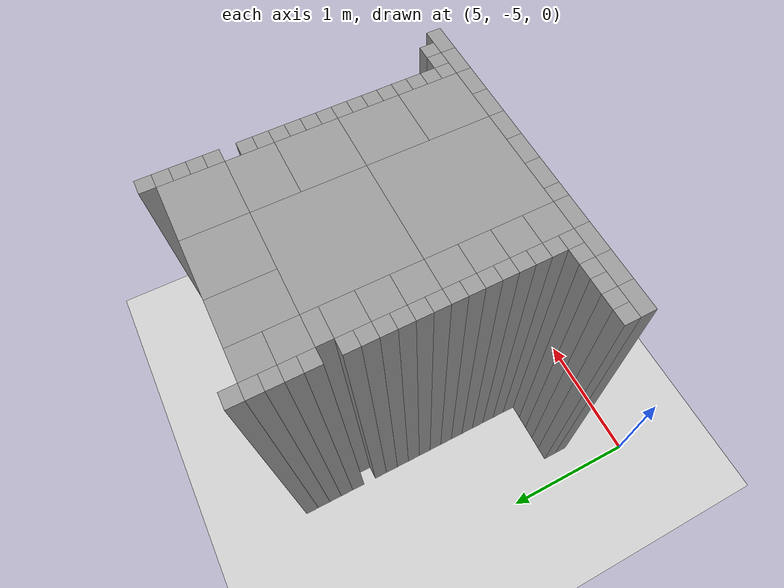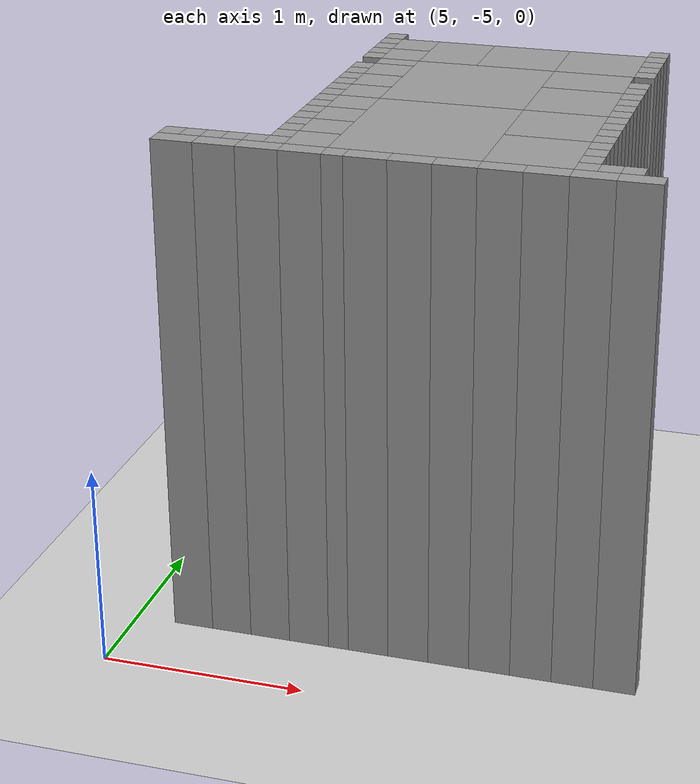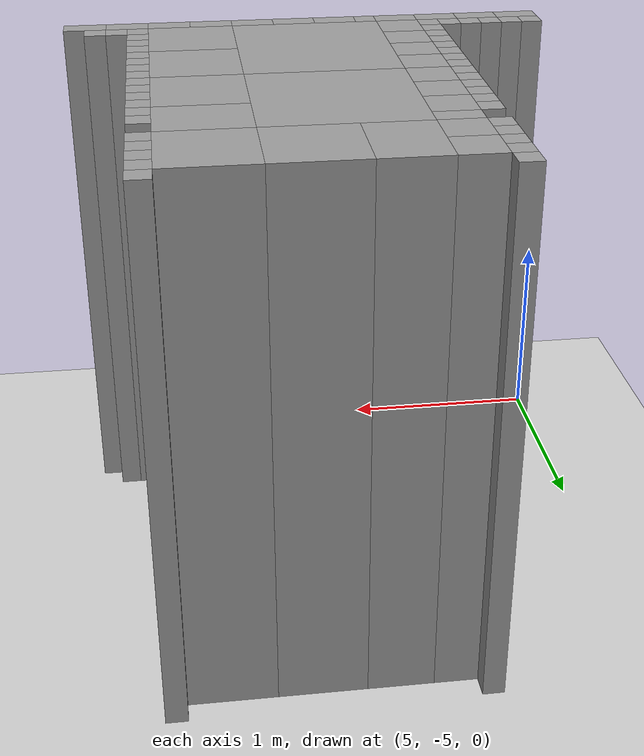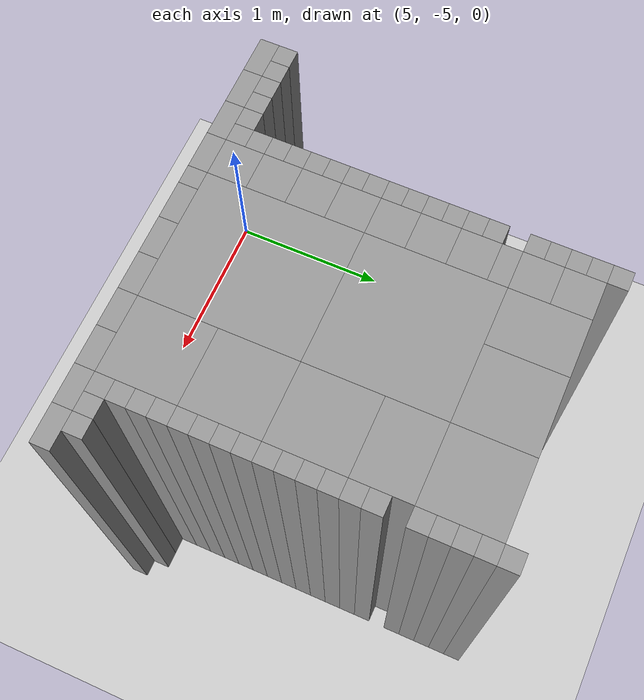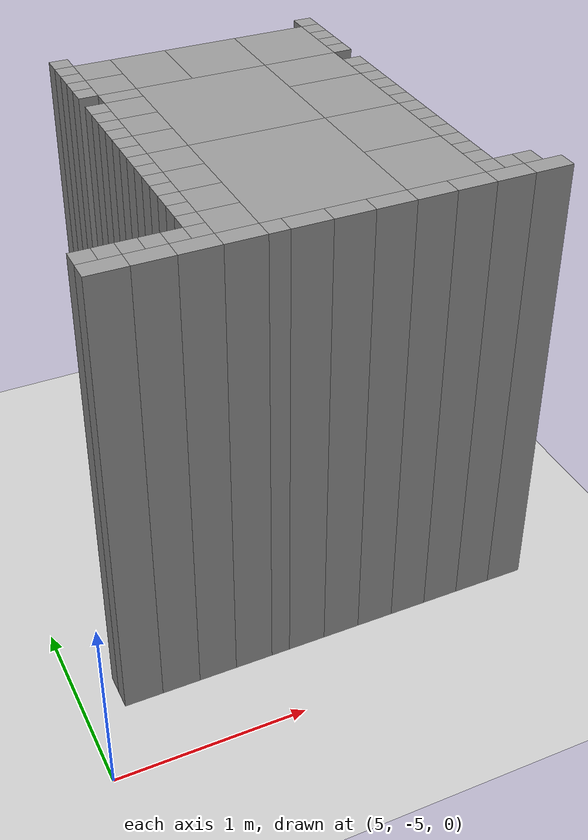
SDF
<sdf version="1.6">
 <world name="default">
  <include><uri>model://sun</uri></include>
  <include><uri>model://ground_plane</uri></include>
  <model name="stage_test">
   <static>1</static>
   <pose>-12 -12 0 0 0 0</pose>
   <link name="Wall_870">
    <pose>17.75 9.45 0 0 0 0</pose>
    <collision name="Wall_870_collision">
     <pose>0 0 1.25 0 0 0</pose>
     <geometry><box><size>0.10000000000000142 0.09999999999999964 2.5</size></box></geometry>
    </collision>
    <visual name="Wall_870_visual">
     <pose>0 0 1.25 0 0 0</pose>
     <geometry><box><size>0.10000000000000142 0.09999999999999964 2.5</size></box></geometry>
     <material>
      <script><uri>file://media/materials/scripts/gazebo.material</uri><name>Gazebo/Grey</name></script>
      <ambient>1 1 1 1</ambient>
     </material>
    </visual>
   </link>
   <link name="Wall_872">
    <pose>17.75 9.35 0 0 0 0</pose>
    <collision name="Wall_872_collision">
     <pose>0 0 1.25 0 0 0</pose>
     <geometry><box><size>0.10000000000000142 0.09999999999999964 2.5</size></box></geometry>
    </collision>
    <visual name="Wall_872_visual">
     <pose>0 0 1.25 0 0 0</pose>
     <geometry><box><size>0.10000000000000142 0.09999999999999964 2.5</size></box></geometry>
     <material>
      <script><uri>file://media/materials/scripts/gazebo.material</uri><name>Gazebo/Grey</name></script>
      <ambient>1 1 1 1</ambient>
     </material>
    </visual>
   </link>
   <link name="Wall_873">
    <pose>17.75 9.25 0 0 0 0</pose>
    <collision name="Wall_873_collision">
     <pose>0 0 1.25 0 0 0</pose>
     <geometry><box><size>0.10000000000000142 0.09999999999999964 2.5</size></box></geometry>
    </collision>
    <visual name="Wall_873_visual">
     <pose>0 0 1.25 0 0 0</pose>
     <geometry><box><size>0.10000000000000142 0.09999999999999964 2.5</size></box></geometry>
     <material>
      <script><uri>file://media/materials/scripts/gazebo.material</uri><name>Gazebo/Grey</name></script>
      <ambient>1 1 1 1</ambient>
     </material>
    </visual>
   </link>
   <link name="Wall_874">
    <pose>17.75 9.15 0 0 0 0</pose>
    <collision name="Wall_874_collision">
     <pose>0 0 1.25 0 0 0</pose>
     <geometry><box><size>0.10000000000000142 0.10000000000000142 2.5</size></box></geometry>
    </collision>
    <visual name="Wall_874_visual">
     <pose>0 0 1.25 0 0 0</pose>
     <geometry><box><size>0.10000000000000142 0.10000000000000142 2.5</size></box></geometry>
     <material>
      <script><uri>file://media/materials/scripts/gazebo.material</uri><name>Gazebo/Grey</name></script>
      <ambient>1 1 1 1</ambient>
     </material>
    </visual>
   </link>
   <link name="Wall_875">
    <pose>17.75 9.05 0 0 0 0</pose>
    <collision name="Wall_875_collision">
     <pose>0 0 1.25 0 0 0</pose>
     <geometry><box><size>0.10000000000000142 0.09999999999999964 2.5</size></box></geometry>
    </collision>
    <visual name="Wall_875_visual">
     <pose>0 0 1.25 0 0 0</pose>
     <geometry><box><size>0.10000000000000142 0.09999999999999964 2.5</size></box></geometry>
     <material>
      <script><uri>file://media/materials/scripts/gazebo.material</uri><name>Gazebo/Grey</name></script>
      <ambient>1 1 1 1</ambient>
     </material>
    </visual>
   </link>
   <link name="Wall_876">
    <pose>17.9 9.3 0 0 0 0</pose>
    <collision name="Wall_876_collision">
     <pose>0 0 1.25 0 0 0</pose>
     <geometry><box><size>0.1999999999999993 0.1999999999999993 2.5</size></box></geometry>
    </collision>
    <visual name="Wall_876_visual">
     <pose>0 0 1.25 0 0 0</pose>
     <geometry><box><size>0.1999999999999993 0.1999999999999993 2.5</size></box></geometry>
     <material>
      <script><uri>file://media/materials/scripts/gazebo.material</uri><name>Gazebo/Grey</name></script>
      <ambient>1 1 1 1</ambient>
     </material>
    </visual>
   </link>
   <link name="Wall_877">
    <pose>17.9 9.100000000000001 0 0 0 0</pose>
    <collision name="Wall_877_collision">
     <pose>0 0 1.25 0 0 0</pose>
     <geometry><box><size>0.1999999999999993 0.20000000000000107 2.5</size></box></geometry>
    </collision>
    <visual name="Wall_877_visual">
     <pose>0 0 1.25 0 0 0</pose>
     <geometry><box><size>0.1999999999999993 0.20000000000000107 2.5</size></box></geometry>
     <material>
      <script><uri>file://media/materials/scripts/gazebo.material</uri><name>Gazebo/Grey</name></script>
      <ambient>1 1 1 1</ambient>
     </material>
    </visual>
   </link>
   <link name="Wall_906">
    <pose>17.75 8.85 0 0 0 0</pose>
    <collision name="Wall_906_collision">
     <pose>0 0 1.25 0 0 0</pose>
     <geometry><box><size>0.10000000000000142 0.09999999999999964 2.5</size></box></geometry>
    </collision>
    <visual name="Wall_906_visual">
     <pose>0 0 1.25 0 0 0</pose>
     <geometry><box><size>0.10000000000000142 0.09999999999999964 2.5</size></box></geometry>
     <material>
      <script><uri>file://media/materials/scripts/gazebo.material</uri><name>Gazebo/Grey</name></script>
      <ambient>1 1 1 1</ambient>
     </material>
    </visual>
   </link>
   <link name="Wall_907">
    <pose>17.75 8.75 0 0 0 0</pose>
    <collision name="Wall_907_collision">
     <pose>0 0 1.25 0 0 0</pose>
     <geometry><box><size>0.10000000000000142 0.09999999999999964 2.5</size></box></geometry>
    </collision>
    <visual name="Wall_907_visual">
     <pose>0 0 1.25 0 0 0</pose>
     <geometry><box><size>0.10000000000000142 0.09999999999999964 2.5</size></box></geometry>
     <material>
      <script><uri>file://media/materials/scripts/gazebo.material</uri><name>Gazebo/Grey</name></script>
      <ambient>1 1 1 1</ambient>
     </material>
    </visual>
   </link>
   <link name="Wall_908">
    <pose>17.9 8.95 0 0 0 0</pose>
    <collision name="Wall_908_collision">
     <pose>0 0 1.25 0 0 0</pose>
     <geometry><box><size>0.1999999999999993 0.09999999999999964 2.5</size></box></geometry>
    </collision>
    <visual name="Wall_908_visual">
     <pose>0 0 1.25 0 0 0</pose>
     <geometry><box><size>0.1999999999999993 0.09999999999999964 2.5</size></box></geometry>
     <material>
      <script><uri>file://media/materials/scripts/gazebo.material</uri><name>Gazebo/Grey</name></script>
      <ambient>1 1 1 1</ambient>
     </material>
    </visual>
   </link>
   <link name="Wall_909">
    <pose>17.9 8.8 0 0 0 0</pose>
    <collision name="Wall_909_collision">
     <pose>0 0 1.25 0 0 0</pose>
     <geometry><box><size>0.1999999999999993 0.1999999999999993 2.5</size></box></geometry>
    </collision>
    <visual name="Wall_909_visual">
     <pose>0 0 1.25 0 0 0</pose>
     <geometry><box><size>0.1999999999999993 0.1999999999999993 2.5</size></box></geometry>
     <material>
      <script><uri>file://media/materials/scripts/gazebo.material</uri><name>Gazebo/Grey</name></script>
      <ambient>1 1 1 1</ambient>
     </material>
    </visual>
   </link>
   <link name="Wall_910">
    <pose>17.75 8.65 0 0 0 0</pose>
    <collision name="Wall_910_collision">
     <pose>0 0 1.25 0 0 0</pose>
     <geometry><box><size>0.10000000000000142 0.10000000000000142 2.5</size></box></geometry>
    </collision>
    <visual name="Wall_910_visual">
     <pose>0 0 1.25 0 0 0</pose>
     <geometry><box><size>0.10000000000000142 0.10000000000000142 2.5</size></box></geometry>
     <material>
      <script><uri>file://media/materials/scripts/gazebo.material</uri><name>Gazebo/Grey</name></script>
      <ambient>1 1 1 1</ambient>
     </material>
    </visual>
   </link>
   <link name="Wall_911">
    <pose>17.75 8.55 0 0 0 0</pose>
    <collision name="Wall_911_collision">
     <pose>0 0 1.25 0 0 0</pose>
     <geometry><box><size>0.10000000000000142 0.09999999999999964 2.5</size></box></geometry>
    </collision>
    <visual name="Wall_911_visual">
     <pose>0 0 1.25 0 0 0</pose>
     <geometry><box><size>0.10000000000000142 0.09999999999999964 2.5</size></box></geometry>
     <material>
      <script><uri>file://media/materials/scripts/gazebo.material</uri><name>Gazebo/Grey</name></script>
      <ambient>1 1 1 1</ambient>
     </material>
    </visual>
   </link>
   <link name="Wall_912">
    <pose>17.75 8.45 0 0 0 0</pose>
    <collision name="Wall_912_collision">
     <pose>0 0 1.25 0 0 0</pose>
     <geometry><box><size>0.10000000000000142 0.09999999999999964 2.5</size></box></geometry>
    </collision>
    <visual name="Wall_912_visual">
     <pose>0 0 1.25 0 0 0</pose>
     <geometry><box><size>0.10000000000000142 0.09999999999999964 2.5</size></box></geometry>
     <material>
      <script><uri>file://media/materials/scripts/gazebo.material</uri><name>Gazebo/Grey</name></script>
      <ambient>1 1 1 1</ambient>
     </material>
    </visual>
   </link>
   <link name="Wall_913">
    <pose>17.75 8.35 0 0 0 0</pose>
    <collision name="Wall_913_collision">
     <pose>0 0 1.25 0 0 0</pose>
     <geometry><box><size>0.10000000000000142 0.09999999999999964 2.5</size></box></geometry>
    </collision>
    <visual name="Wall_913_visual">
     <pose>0 0 1.25 0 0 0</pose>
     <geometry><box><size>0.10000000000000142 0.09999999999999964 2.5</size></box></geometry>
     <material>
      <script><uri>file://media/materials/scripts/gazebo.material</uri><name>Gazebo/Grey</name></script>
      <ambient>1 1 1 1</ambient>
     </material>
    </visual>
   </link>
   <link name="Wall_914">
    <pose>17.9 8.600000000000001 0 0 0 0</pose>
    <collision name="Wall_914_collision">
     <pose>0 0 1.25 0 0 0</pose>
     <geometry><box><size>0.1999999999999993 0.20000000000000107 2.5</size></box></geometry>
    </collision>
    <visual name="Wall_914_visual">
     <pose>0 0 1.25 0 0 0</pose>
     <geometry><box><size>0.1999999999999993 0.20000000000000107 2.5</size></box></geometry>
     <material>
      <script><uri>file://media/materials/scripts/gazebo.material</uri><name>Gazebo/Grey</name></script>
      <ambient>1 1 1 1</ambient>
     </material>
    </visual>
   </link>
   <link name="Wall_915">
    <pose>17.9 8.4 0 0 0 0</pose>
    <collision name="Wall_915_collision">
     <pose>0 0 1.25 0 0 0</pose>
     <geometry><box><size>0.1999999999999993 0.1999999999999993 2.5</size></box></geometry>
    </collision>
    <visual name="Wall_915_visual">
     <pose>0 0 1.25 0 0 0</pose>
     <geometry><box><size>0.1999999999999993 0.1999999999999993 2.5</size></box></geometry>
     <material>
      <script><uri>file://media/materials/scripts/gazebo.material</uri><name>Gazebo/Grey</name></script>
      <ambient>1 1 1 1</ambient>
     </material>
    </visual>
   </link>
   <link name="Wall_916">
    <pose>17.25 7.550000000000001 0 0 0 0</pose>
    <collision name="Wall_916_collision">
     <pose>0 0 1.25 0 0 0</pose>
     <geometry><box><size>0.10000000000000142 0.10000000000000053 2.5</size></box></geometry>
    </collision>
    <visual name="Wall_916_visual">
     <pose>0 0 1.25 0 0 0</pose>
     <geometry><box><size>0.10000000000000142 0.10000000000000053 2.5</size></box></geometry>
     <material>
      <script><uri>file://media/materials/scripts/gazebo.material</uri><name>Gazebo/Grey</name></script>
      <ambient>1 1 1 1</ambient>
     </material>
    </visual>
   </link>
   <link name="Wall_917">
    <pose>17.35 7.550000000000001 0 0 0 0</pose>
    <collision name="Wall_917_collision">
     <pose>0 0 1.25 0 0 0</pose>
     <geometry><box><size>0.10000000000000142 0.10000000000000053 2.5</size></box></geometry>
    </collision>
    <visual name="Wall_917_visual">
     <pose>0 0 1.25 0 0 0</pose>
     <geometry><box><size>0.10000000000000142 0.10000000000000053 2.5</size></box></geometry>
     <material>
      <script><uri>file://media/materials/scripts/gazebo.material</uri><name>Gazebo/Grey</name></script>
      <ambient>1 1 1 1</ambient>
     </material>
    </visual>
   </link>
   <link name="Wall_918">
    <pose>17.450000000000003 7.550000000000001 0 0 0 0</pose>
    <collision name="Wall_918_collision">
     <pose>0 0 1.25 0 0 0</pose>
     <geometry><box><size>0.09999999999999787 0.10000000000000053 2.5</size></box></geometry>
    </collision>
    <visual name="Wall_918_visual">
     <pose>0 0 1.25 0 0 0</pose>
     <geometry><box><size>0.09999999999999787 0.10000000000000053 2.5</size></box></geometry>
     <material>
      <script><uri>file://media/materials/scripts/gazebo.material</uri><name>Gazebo/Grey</name></script>
      <ambient>1 1 1 1</ambient>
     </material>
    </visual>
   </link>
   <link name="Wall_919">
    <pose>17.55 7.550000000000001 0 0 0 0</pose>
    <collision name="Wall_919_collision">
     <pose>0 0 1.25 0 0 0</pose>
     <geometry><box><size>0.10000000000000142 0.10000000000000053 2.5</size></box></geometry>
    </collision>
    <visual name="Wall_919_visual">
     <pose>0 0 1.25 0 0 0</pose>
     <geometry><box><size>0.10000000000000142 0.10000000000000053 2.5</size></box></geometry>
     <material>
      <script><uri>file://media/materials/scripts/gazebo.material</uri><name>Gazebo/Grey</name></script>
      <ambient>1 1 1 1</ambient>
     </material>
    </visual>
   </link>
   <link name="Wall_920">
    <pose>17.75 8.25 0 0 0 0</pose>
    <collision name="Wall_920_collision">
     <pose>0 0 1.25 0 0 0</pose>
     <geometry><box><size>0.10000000000000142 0.09999999999999964 2.5</size></box></geometry>
    </collision>
    <visual name="Wall_920_visual">
     <pose>0 0 1.25 0 0 0</pose>
     <geometry><box><size>0.10000000000000142 0.09999999999999964 2.5</size></box></geometry>
     <material>
      <script><uri>file://media/materials/scripts/gazebo.material</uri><name>Gazebo/Grey</name></script>
      <ambient>1 1 1 1</ambient>
     </material>
    </visual>
   </link>
   <link name="Wall_921">
    <pose>17.75 8.15 0 0 0 0</pose>
    <collision name="Wall_921_collision">
     <pose>0 0 1.25 0 0 0</pose>
     <geometry><box><size>0.10000000000000142 0.10000000000000142 2.5</size></box></geometry>
    </collision>
    <visual name="Wall_921_visual">
     <pose>0 0 1.25 0 0 0</pose>
     <geometry><box><size>0.10000000000000142 0.10000000000000142 2.5</size></box></geometry>
     <material>
      <script><uri>file://media/materials/scripts/gazebo.material</uri><name>Gazebo/Grey</name></script>
      <ambient>1 1 1 1</ambient>
     </material>
    </visual>
   </link>
   <link name="Wall_922">
    <pose>17.75 8.05 0 0 0 0</pose>
    <collision name="Wall_922_collision">
     <pose>0 0 1.25 0 0 0</pose>
     <geometry><box><size>0.10000000000000142 0.09999999999999964 2.5</size></box></geometry>
    </collision>
    <visual name="Wall_922_visual">
     <pose>0 0 1.25 0 0 0</pose>
     <geometry><box><size>0.10000000000000142 0.09999999999999964 2.5</size></box></geometry>
     <material>
      <script><uri>file://media/materials/scripts/gazebo.material</uri><name>Gazebo/Grey</name></script>
      <ambient>1 1 1 1</ambient>
     </material>
    </visual>
   </link>
   <link name="Wall_923">
    <pose>17.75 7.95 0 0 0 0</pose>
    <collision name="Wall_923_collision">
     <pose>0 0 1.25 0 0 0</pose>
     <geometry><box><size>0.10000000000000142 0.09999999999999964 2.5</size></box></geometry>
    </collision>
    <visual name="Wall_923_visual">
     <pose>0 0 1.25 0 0 0</pose>
     <geometry><box><size>0.10000000000000142 0.09999999999999964 2.5</size></box></geometry>
     <material>
      <script><uri>file://media/materials/scripts/gazebo.material</uri><name>Gazebo/Grey</name></script>
      <ambient>1 1 1 1</ambient>
     </material>
    </visual>
   </link>
   <link name="Wall_924">
    <pose>17.9 8.2 0 0 0 0</pose>
    <collision name="Wall_924_collision">
     <pose>0 0 1.25 0 0 0</pose>
     <geometry><box><size>0.1999999999999993 0.20000000000000107 2.5</size></box></geometry>
    </collision>
    <visual name="Wall_924_visual">
     <pose>0 0 1.25 0 0 0</pose>
     <geometry><box><size>0.1999999999999993 0.20000000000000107 2.5</size></box></geometry>
     <material>
      <script><uri>file://media/materials/scripts/gazebo.material</uri><name>Gazebo/Grey</name></script>
      <ambient>1 1 1 1</ambient>
     </material>
    </visual>
   </link>
   <link name="Wall_925">
    <pose>17.9 8.0 0 0 0 0</pose>
    <collision name="Wall_925_collision">
     <pose>0 0 1.25 0 0 0</pose>
     <geometry><box><size>0.1999999999999993 0.1999999999999993 2.5</size></box></geometry>
    </collision>
    <visual name="Wall_925_visual">
     <pose>0 0 1.25 0 0 0</pose>
     <geometry><box><size>0.1999999999999993 0.1999999999999993 2.5</size></box></geometry>
     <material>
      <script><uri>file://media/materials/scripts/gazebo.material</uri><name>Gazebo/Grey</name></script>
      <ambient>1 1 1 1</ambient>
     </material>
    </visual>
   </link>
   <link name="Wall_926">
    <pose>17.75 7.85 0 0 0 0</pose>
    <collision name="Wall_926_collision">
     <pose>0 0 1.25 0 0 0</pose>
     <geometry><box><size>0.10000000000000142 0.09999999999999964 2.5</size></box></geometry>
    </collision>
    <visual name="Wall_926_visual">
     <pose>0 0 1.25 0 0 0</pose>
     <geometry><box><size>0.10000000000000142 0.09999999999999964 2.5</size></box></geometry>
     <material>
      <script><uri>file://media/materials/scripts/gazebo.material</uri><name>Gazebo/Grey</name></script>
      <ambient>1 1 1 1</ambient>
     </material>
    </visual>
   </link>
   <link name="Wall_927">
    <pose>17.75 7.750000000000001 0 0 0 0</pose>
    <collision name="Wall_927_collision">
     <pose>0 0 1.25 0 0 0</pose>
     <geometry><box><size>0.10000000000000142 0.10000000000000053 2.5</size></box></geometry>
    </collision>
    <visual name="Wall_927_visual">
     <pose>0 0 1.25 0 0 0</pose>
     <geometry><box><size>0.10000000000000142 0.10000000000000053 2.5</size></box></geometry>
     <material>
      <script><uri>file://media/materials/scripts/gazebo.material</uri><name>Gazebo/Grey</name></script>
      <ambient>1 1 1 1</ambient>
     </material>
    </visual>
   </link>
   <link name="Wall_928">
    <pose>17.65 7.550000000000001 0 0 0 0</pose>
    <collision name="Wall_928_collision">
     <pose>0 0 1.25 0 0 0</pose>
     <geometry><box><size>0.09999999999999787 0.10000000000000053 2.5</size></box></geometry>
    </collision>
    <visual name="Wall_928_visual">
     <pose>0 0 1.25 0 0 0</pose>
     <geometry><box><size>0.09999999999999787 0.10000000000000053 2.5</size></box></geometry>
     <material>
      <script><uri>file://media/materials/scripts/gazebo.material</uri><name>Gazebo/Grey</name></script>
      <ambient>1 1 1 1</ambient>
     </material>
    </visual>
   </link>
   <link name="Wall_929">
    <pose>17.75 7.65 0 0 0 0</pose>
    <collision name="Wall_929_collision">
     <pose>0 0 1.25 0 0 0</pose>
     <geometry><box><size>0.10000000000000142 0.09999999999999964 2.5</size></box></geometry>
    </collision>
    <visual name="Wall_929_visual">
     <pose>0 0 1.25 0 0 0</pose>
     <geometry><box><size>0.10000000000000142 0.09999999999999964 2.5</size></box></geometry>
     <material>
      <script><uri>file://media/materials/scripts/gazebo.material</uri><name>Gazebo/Grey</name></script>
      <ambient>1 1 1 1</ambient>
     </material>
    </visual>
   </link>
   <link name="Wall_930">
    <pose>17.75 7.550000000000001 0 0 0 0</pose>
    <collision name="Wall_930_collision">
     <pose>0 0 1.25 0 0 0</pose>
     <geometry><box><size>0.10000000000000142 0.10000000000000053 2.5</size></box></geometry>
    </collision>
    <visual name="Wall_930_visual">
     <pose>0 0 1.25 0 0 0</pose>
     <geometry><box><size>0.10000000000000142 0.10000000000000053 2.5</size></box></geometry>
     <material>
      <script><uri>file://media/materials/scripts/gazebo.material</uri><name>Gazebo/Grey</name></script>
      <ambient>1 1 1 1</ambient>
     </material>
    </visual>
   </link>
   <link name="Wall_931">
    <pose>17.9 7.800000000000001 0 0 0 0</pose>
    <collision name="Wall_931_collision">
     <pose>0 0 1.25 0 0 0</pose>
     <geometry><box><size>0.1999999999999993 0.20000000000000018 2.5</size></box></geometry>
    </collision>
    <visual name="Wall_931_visual">
     <pose>0 0 1.25 0 0 0</pose>
     <geometry><box><size>0.1999999999999993 0.20000000000000018 2.5</size></box></geometry>
     <material>
      <script><uri>file://media/materials/scripts/gazebo.material</uri><name>Gazebo/Grey</name></script>
      <ambient>1 1 1 1</ambient>
     </material>
    </visual>
   </link>
   <link name="Wall_932">
    <pose>17.9 7.6 0 0 0 0</pose>
    <collision name="Wall_932_collision">
     <pose>0 0 1.25 0 0 0</pose>
     <geometry><box><size>0.1999999999999993 0.20000000000000018 2.5</size></box></geometry>
    </collision>
    <visual name="Wall_932_visual">
     <pose>0 0 1.25 0 0 0</pose>
     <geometry><box><size>0.1999999999999993 0.20000000000000018 2.5</size></box></geometry>
     <material>
      <script><uri>file://media/materials/scripts/gazebo.material</uri><name>Gazebo/Grey</name></script>
      <ambient>1 1 1 1</ambient>
     </material>
    </visual>
   </link>
   <link name="Wall_937">
    <pose>17.3 7.45 0 0 0 0</pose>
    <collision name="Wall_937_collision">
     <pose>0 0 1.25 0 0 0</pose>
     <geometry><box><size>0.20000000000000284 0.09999999999999964 2.5</size></box></geometry>
    </collision>
    <visual name="Wall_937_visual">
     <pose>0 0 1.25 0 0 0</pose>
     <geometry><box><size>0.20000000000000284 0.09999999999999964 2.5</size></box></geometry>
     <material>
      <script><uri>file://media/materials/scripts/gazebo.material</uri><name>Gazebo/Grey</name></script>
      <ambient>1 1 1 1</ambient>
     </material>
    </visual>
   </link>
   <link name="Wall_938">
    <pose>17.5 7.45 0 0 0 0</pose>
    <collision name="Wall_938_collision">
     <pose>0 0 1.25 0 0 0</pose>
     <geometry><box><size>0.1999999999999993 0.09999999999999964 2.5</size></box></geometry>
    </collision>
    <visual name="Wall_938_visual">
     <pose>0 0 1.25 0 0 0</pose>
     <geometry><box><size>0.1999999999999993 0.09999999999999964 2.5</size></box></geometry>
     <material>
      <script><uri>file://media/materials/scripts/gazebo.material</uri><name>Gazebo/Grey</name></script>
      <ambient>1 1 1 1</ambient>
     </material>
    </visual>
   </link>
   <link name="Wall_939">
    <pose>17.700000000000003 7.45 0 0 0 0</pose>
    <collision name="Wall_939_collision">
     <pose>0 0 1.25 0 0 0</pose>
     <geometry><box><size>0.1999999999999993 0.09999999999999964 2.5</size></box></geometry>
    </collision>
    <visual name="Wall_939_visual">
     <pose>0 0 1.25 0 0 0</pose>
     <geometry><box><size>0.1999999999999993 0.09999999999999964 2.5</size></box></geometry>
     <material>
      <script><uri>file://media/materials/scripts/gazebo.material</uri><name>Gazebo/Grey</name></script>
      <ambient>1 1 1 1</ambient>
     </material>
    </visual>
   </link>
   <link name="Wall_940">
    <pose>17.9 7.45 0 0 0 0</pose>
    <collision name="Wall_940_collision">
     <pose>0 0 1.25 0 0 0</pose>
     <geometry><box><size>0.1999999999999993 0.09999999999999964 2.5</size></box></geometry>
    </collision>
    <visual name="Wall_940_visual">
     <pose>0 0 1.25 0 0 0</pose>
     <geometry><box><size>0.1999999999999993 0.09999999999999964 2.5</size></box></geometry>
     <material>
      <script><uri>file://media/materials/scripts/gazebo.material</uri><name>Gazebo/Grey</name></script>
      <ambient>1 1 1 1</ambient>
     </material>
    </visual>
   </link>
   <link name="Wall_943">
    <pose>18.15 9.2 0 0 0 0</pose>
    <collision name="Wall_943_collision">
     <pose>0 0 1.25 0 0 0</pose>
     <geometry><box><size>0.3000000000000007 0.40000000000000036 2.5</size></box></geometry>
    </collision>
    <visual name="Wall_943_visual">
     <pose>0 0 1.25 0 0 0</pose>
     <geometry><box><size>0.3000000000000007 0.40000000000000036 2.5</size></box></geometry>
     <material>
      <script><uri>file://media/materials/scripts/gazebo.material</uri><name>Gazebo/Grey</name></script>
      <ambient>1 1 1 1</ambient>
     </material>
    </visual>
   </link>
   <link name="Wall_946">
    <pose>18.5 9.2 0 0 0 0</pose>
    <collision name="Wall_946_collision">
     <pose>0 0 1.25 0 0 0</pose>
     <geometry><box><size>0.3999999999999986 0.40000000000000036 2.5</size></box></geometry>
    </collision>
    <visual name="Wall_946_visual">
     <pose>0 0 1.25 0 0 0</pose>
     <geometry><box><size>0.3999999999999986 0.40000000000000036 2.5</size></box></geometry>
     <material>
      <script><uri>file://media/materials/scripts/gazebo.material</uri><name>Gazebo/Grey</name></script>
      <ambient>1 1 1 1</ambient>
     </material>
    </visual>
   </link>
   <link name="Wall_949">
    <pose>18.9 9.2 0 0 0 0</pose>
    <collision name="Wall_949_collision">
     <pose>0 0 1.25 0 0 0</pose>
     <geometry><box><size>0.40000000000000213 0.40000000000000036 2.5</size></box></geometry>
    </collision>
    <visual name="Wall_949_visual">
     <pose>0 0 1.25 0 0 0</pose>
     <geometry><box><size>0.40000000000000213 0.40000000000000036 2.5</size></box></geometry>
     <material>
      <script><uri>file://media/materials/scripts/gazebo.material</uri><name>Gazebo/Grey</name></script>
      <ambient>1 1 1 1</ambient>
     </material>
    </visual>
   </link>
   <link name="Wall_951">
    <pose>19.150000000000002 9.45 0 0 0 0</pose>
    <collision name="Wall_951_collision">
     <pose>0 0 1.25 0 0 0</pose>
     <geometry><box><size>0.10000000000000142 0.09999999999999964 2.5</size></box></geometry>
    </collision>
    <visual name="Wall_951_visual">
     <pose>0 0 1.25 0 0 0</pose>
     <geometry><box><size>0.10000000000000142 0.09999999999999964 2.5</size></box></geometry>
     <material>
      <script><uri>file://media/materials/scripts/gazebo.material</uri><name>Gazebo/Grey</name></script>
      <ambient>1 1 1 1</ambient>
     </material>
    </visual>
   </link>
   <link name="Wall_952">
    <pose>19.150000000000002 9.35 0 0 0 0</pose>
    <collision name="Wall_952_collision">
     <pose>0 0 1.25 0 0 0</pose>
     <geometry><box><size>0.10000000000000142 0.09999999999999964 2.5</size></box></geometry>
    </collision>
    <visual name="Wall_952_visual">
     <pose>0 0 1.25 0 0 0</pose>
     <geometry><box><size>0.10000000000000142 0.09999999999999964 2.5</size></box></geometry>
     <material>
      <script><uri>file://media/materials/scripts/gazebo.material</uri><name>Gazebo/Grey</name></script>
      <ambient>1 1 1 1</ambient>
     </material>
    </visual>
   </link>
   <link name="Wall_953">
    <pose>19.150000000000002 9.25 0 0 0 0</pose>
    <collision name="Wall_953_collision">
     <pose>0 0 1.25 0 0 0</pose>
     <geometry><box><size>0.10000000000000142 0.09999999999999964 2.5</size></box></geometry>
    </collision>
    <visual name="Wall_953_visual">
     <pose>0 0 1.25 0 0 0</pose>
     <geometry><box><size>0.10000000000000142 0.09999999999999964 2.5</size></box></geometry>
     <material>
      <script><uri>file://media/materials/scripts/gazebo.material</uri><name>Gazebo/Grey</name></script>
      <ambient>1 1 1 1</ambient>
     </material>
    </visual>
   </link>
   <link name="Wall_954">
    <pose>19.150000000000002 9.15 0 0 0 0</pose>
    <collision name="Wall_954_collision">
     <pose>0 0 1.25 0 0 0</pose>
     <geometry><box><size>0.10000000000000142 0.10000000000000142 2.5</size></box></geometry>
    </collision>
    <visual name="Wall_954_visual">
     <pose>0 0 1.25 0 0 0</pose>
     <geometry><box><size>0.10000000000000142 0.10000000000000142 2.5</size></box></geometry>
     <material>
      <script><uri>file://media/materials/scripts/gazebo.material</uri><name>Gazebo/Grey</name></script>
      <ambient>1 1 1 1</ambient>
     </material>
    </visual>
   </link>
   <link name="Wall_955">
    <pose>19.150000000000002 9.05 0 0 0 0</pose>
    <collision name="Wall_955_collision">
     <pose>0 0 1.25 0 0 0</pose>
     <geometry><box><size>0.10000000000000142 0.09999999999999964 2.5</size></box></geometry>
    </collision>
    <visual name="Wall_955_visual">
     <pose>0 0 1.25 0 0 0</pose>
     <geometry><box><size>0.10000000000000142 0.09999999999999964 2.5</size></box></geometry>
     <material>
      <script><uri>file://media/materials/scripts/gazebo.material</uri><name>Gazebo/Grey</name></script>
      <ambient>1 1 1 1</ambient>
     </material>
    </visual>
   </link>
   <link name="Wall_956">
    <pose>18.35 8.65 0 0 0 0</pose>
    <collision name="Wall_956_collision">
     <pose>0 0 1.25 0 0 0</pose>
     <geometry><box><size>0.6999999999999993 0.6999999999999993 2.5</size></box></geometry>
    </collision>
    <visual name="Wall_956_visual">
     <pose>0 0 1.25 0 0 0</pose>
     <geometry><box><size>0.6999999999999993 0.6999999999999993 2.5</size></box></geometry>
     <material>
      <script><uri>file://media/materials/scripts/gazebo.material</uri><name>Gazebo/Grey</name></script>
      <ambient>1 1 1 1</ambient>
     </material>
    </visual>
   </link>
   <link name="Wall_957">
    <pose>18.35 7.9 0 0 0 0</pose>
    <collision name="Wall_957_collision">
     <pose>0 0 1.25 0 0 0</pose>
     <geometry><box><size>0.6999999999999993 0.8000000000000007 2.5</size></box></geometry>
    </collision>
    <visual name="Wall_957_visual">
     <pose>0 0 1.25 0 0 0</pose>
     <geometry><box><size>0.6999999999999993 0.8000000000000007 2.5</size></box></geometry>
     <material>
      <script><uri>file://media/materials/scripts/gazebo.material</uri><name>Gazebo/Grey</name></script>
      <ambient>1 1 1 1</ambient>
     </material>
    </visual>
   </link>
   <link name="Wall_958">
    <pose>18.9 8.850000000000001 0 0 0 0</pose>
    <collision name="Wall_958_collision">
     <pose>0 0 1.25 0 0 0</pose>
     <geometry><box><size>0.40000000000000213 0.29999999999999893 2.5</size></box></geometry>
    </collision>
    <visual name="Wall_958_visual">
     <pose>0 0 1.25 0 0 0</pose>
     <geometry><box><size>0.40000000000000213 0.29999999999999893 2.5</size></box></geometry>
     <material>
      <script><uri>file://media/materials/scripts/gazebo.material</uri><name>Gazebo/Grey</name></script>
      <ambient>1 1 1 1</ambient>
     </material>
    </visual>
   </link>
   <link name="Wall_959">
    <pose>18.9 8.500000000000002 0 0 0 0</pose>
    <collision name="Wall_959_collision">
     <pose>0 0 1.25 0 0 0</pose>
     <geometry><box><size>0.40000000000000213 0.40000000000000036 2.5</size></box></geometry>
    </collision>
    <visual name="Wall_959_visual">
     <pose>0 0 1.25 0 0 0</pose>
     <geometry><box><size>0.40000000000000213 0.40000000000000036 2.5</size></box></geometry>
     <material>
      <script><uri>file://media/materials/scripts/gazebo.material</uri><name>Gazebo/Grey</name></script>
      <ambient>1 1 1 1</ambient>
     </material>
    </visual>
   </link>
   <link name="Wall_960">
    <pose>19.150000000000002 8.85 0 0 0 0</pose>
    <collision name="Wall_960_collision">
     <pose>0 0 1.25 0 0 0</pose>
     <geometry><box><size>0.10000000000000142 0.09999999999999964 2.5</size></box></geometry>
    </collision>
    <visual name="Wall_960_visual">
     <pose>0 0 1.25 0 0 0</pose>
     <geometry><box><size>0.10000000000000142 0.09999999999999964 2.5</size></box></geometry>
     <material>
      <script><uri>file://media/materials/scripts/gazebo.material</uri><name>Gazebo/Grey</name></script>
      <ambient>1 1 1 1</ambient>
     </material>
    </visual>
   </link>
   <link name="Wall_961">
    <pose>19.150000000000002 8.75 0 0 0 0</pose>
    <collision name="Wall_961_collision">
     <pose>0 0 1.25 0 0 0</pose>
     <geometry><box><size>0.10000000000000142 0.09999999999999964 2.5</size></box></geometry>
    </collision>
    <visual name="Wall_961_visual">
     <pose>0 0 1.25 0 0 0</pose>
     <geometry><box><size>0.10000000000000142 0.09999999999999964 2.5</size></box></geometry>
     <material>
      <script><uri>file://media/materials/scripts/gazebo.material</uri><name>Gazebo/Grey</name></script>
      <ambient>1 1 1 1</ambient>
     </material>
    </visual>
   </link>
   <link name="Wall_962">
    <pose>19.150000000000002 8.65 0 0 0 0</pose>
    <collision name="Wall_962_collision">
     <pose>0 0 1.25 0 0 0</pose>
     <geometry><box><size>0.10000000000000142 0.10000000000000142 2.5</size></box></geometry>
    </collision>
    <visual name="Wall_962_visual">
     <pose>0 0 1.25 0 0 0</pose>
     <geometry><box><size>0.10000000000000142 0.10000000000000142 2.5</size></box></geometry>
     <material>
      <script><uri>file://media/materials/scripts/gazebo.material</uri><name>Gazebo/Grey</name></script>
      <ambient>1 1 1 1</ambient>
     </material>
    </visual>
   </link>
   <link name="Wall_963">
    <pose>19.150000000000002 8.55 0 0 0 0</pose>
    <collision name="Wall_963_collision">
     <pose>0 0 1.25 0 0 0</pose>
     <geometry><box><size>0.10000000000000142 0.09999999999999964 2.5</size></box></geometry>
    </collision>
    <visual name="Wall_963_visual">
     <pose>0 0 1.25 0 0 0</pose>
     <geometry><box><size>0.10000000000000142 0.09999999999999964 2.5</size></box></geometry>
     <material>
      <script><uri>file://media/materials/scripts/gazebo.material</uri><name>Gazebo/Grey</name></script>
      <ambient>1 1 1 1</ambient>
     </material>
    </visual>
   </link>
   <link name="Wall_964">
    <pose>19.150000000000002 8.45 0 0 0 0</pose>
    <collision name="Wall_964_collision">
     <pose>0 0 1.25 0 0 0</pose>
     <geometry><box><size>0.10000000000000142 0.09999999999999964 2.5</size></box></geometry>
    </collision>
    <visual name="Wall_964_visual">
     <pose>0 0 1.25 0 0 0</pose>
     <geometry><box><size>0.10000000000000142 0.09999999999999964 2.5</size></box></geometry>
     <material>
      <script><uri>file://media/materials/scripts/gazebo.material</uri><name>Gazebo/Grey</name></script>
      <ambient>1 1 1 1</ambient>
     </material>
    </visual>
   </link>
   <link name="Wall_965">
    <pose>19.150000000000002 8.35 0 0 0 0</pose>
    <collision name="Wall_965_collision">
     <pose>0 0 1.25 0 0 0</pose>
     <geometry><box><size>0.10000000000000142 0.09999999999999964 2.5</size></box></geometry>
    </collision>
    <visual name="Wall_965_visual">
     <pose>0 0 1.25 0 0 0</pose>
     <geometry><box><size>0.10000000000000142 0.09999999999999964 2.5</size></box></geometry>
     <material>
      <script><uri>file://media/materials/scripts/gazebo.material</uri><name>Gazebo/Grey</name></script>
      <ambient>1 1 1 1</ambient>
     </material>
    </visual>
   </link>
   <link name="Wall_966">
    <pose>18.9 8.100000000000001 0 0 0 0</pose>
    <collision name="Wall_966_collision">
     <pose>0 0 1.25 0 0 0</pose>
     <geometry><box><size>0.40000000000000213 0.40000000000000036 2.5</size></box></geometry>
    </collision>
    <visual name="Wall_966_visual">
     <pose>0 0 1.25 0 0 0</pose>
     <geometry><box><size>0.40000000000000213 0.40000000000000036 2.5</size></box></geometry>
     <material>
      <script><uri>file://media/materials/scripts/gazebo.material</uri><name>Gazebo/Grey</name></script>
      <ambient>1 1 1 1</ambient>
     </material>
    </visual>
   </link>
   <link name="Wall_967">
    <pose>18.9 7.699999999999999 0 0 0 0</pose>
    <collision name="Wall_967_collision">
     <pose>0 0 1.25 0 0 0</pose>
     <geometry><box><size>0.40000000000000213 0.40000000000000036 2.5</size></box></geometry>
    </collision>
    <visual name="Wall_967_visual">
     <pose>0 0 1.25 0 0 0</pose>
     <geometry><box><size>0.40000000000000213 0.40000000000000036 2.5</size></box></geometry>
     <material>
      <script><uri>file://media/materials/scripts/gazebo.material</uri><name>Gazebo/Grey</name></script>
      <ambient>1 1 1 1</ambient>
     </material>
    </visual>
   </link>
   <link name="Wall_968">
    <pose>19.150000000000002 8.25 0 0 0 0</pose>
    <collision name="Wall_968_collision">
     <pose>0 0 1.25 0 0 0</pose>
     <geometry><box><size>0.10000000000000142 0.09999999999999964 2.5</size></box></geometry>
    </collision>
    <visual name="Wall_968_visual">
     <pose>0 0 1.25 0 0 0</pose>
     <geometry><box><size>0.10000000000000142 0.09999999999999964 2.5</size></box></geometry>
     <material>
      <script><uri>file://media/materials/scripts/gazebo.material</uri><name>Gazebo/Grey</name></script>
      <ambient>1 1 1 1</ambient>
     </material>
    </visual>
   </link>
   <link name="Wall_969">
    <pose>19.150000000000002 8.15 0 0 0 0</pose>
    <collision name="Wall_969_collision">
     <pose>0 0 1.25 0 0 0</pose>
     <geometry><box><size>0.10000000000000142 0.10000000000000142 2.5</size></box></geometry>
    </collision>
    <visual name="Wall_969_visual">
     <pose>0 0 1.25 0 0 0</pose>
     <geometry><box><size>0.10000000000000142 0.10000000000000142 2.5</size></box></geometry>
     <material>
      <script><uri>file://media/materials/scripts/gazebo.material</uri><name>Gazebo/Grey</name></script>
      <ambient>1 1 1 1</ambient>
     </material>
    </visual>
   </link>
   <link name="Wall_970">
    <pose>19.150000000000002 8.05 0 0 0 0</pose>
    <collision name="Wall_970_collision">
     <pose>0 0 1.25 0 0 0</pose>
     <geometry><box><size>0.10000000000000142 0.09999999999999964 2.5</size></box></geometry>
    </collision>
    <visual name="Wall_970_visual">
     <pose>0 0 1.25 0 0 0</pose>
     <geometry><box><size>0.10000000000000142 0.09999999999999964 2.5</size></box></geometry>
     <material>
      <script><uri>file://media/materials/scripts/gazebo.material</uri><name>Gazebo/Grey</name></script>
      <ambient>1 1 1 1</ambient>
     </material>
    </visual>
   </link>
   <link name="Wall_971">
    <pose>19.150000000000002 7.95 0 0 0 0</pose>
    <collision name="Wall_971_collision">
     <pose>0 0 1.25 0 0 0</pose>
     <geometry><box><size>0.10000000000000142 0.09999999999999964 2.5</size></box></geometry>
    </collision>
    <visual name="Wall_971_visual">
     <pose>0 0 1.25 0 0 0</pose>
     <geometry><box><size>0.10000000000000142 0.09999999999999964 2.5</size></box></geometry>
     <material>
      <script><uri>file://media/materials/scripts/gazebo.material</uri><name>Gazebo/Grey</name></script>
      <ambient>1 1 1 1</ambient>
     </material>
    </visual>
   </link>
   <link name="Wall_972">
    <pose>19.150000000000002 7.85 0 0 0 0</pose>
    <collision name="Wall_972_collision">
     <pose>0 0 1.25 0 0 0</pose>
     <geometry><box><size>0.10000000000000142 0.09999999999999964 2.5</size></box></geometry>
    </collision>
    <visual name="Wall_972_visual">
     <pose>0 0 1.25 0 0 0</pose>
     <geometry><box><size>0.10000000000000142 0.09999999999999964 2.5</size></box></geometry>
     <material>
      <script><uri>file://media/materials/scripts/gazebo.material</uri><name>Gazebo/Grey</name></script>
      <ambient>1 1 1 1</ambient>
     </material>
    </visual>
   </link>
   <link name="Wall_973">
    <pose>19.150000000000002 7.750000000000001 0 0 0 0</pose>
    <collision name="Wall_973_collision">
     <pose>0 0 1.25 0 0 0</pose>
     <geometry><box><size>0.10000000000000142 0.10000000000000053 2.5</size></box></geometry>
    </collision>
    <visual name="Wall_973_visual">
     <pose>0 0 1.25 0 0 0</pose>
     <geometry><box><size>0.10000000000000142 0.10000000000000053 2.5</size></box></geometry>
     <material>
      <script><uri>file://media/materials/scripts/gazebo.material</uri><name>Gazebo/Grey</name></script>
      <ambient>1 1 1 1</ambient>
     </material>
    </visual>
   </link>
   <link name="Wall_974">
    <pose>19.150000000000002 7.65 0 0 0 0</pose>
    <collision name="Wall_974_collision">
     <pose>0 0 1.25 0 0 0</pose>
     <geometry><box><size>0.10000000000000142 0.09999999999999964 2.5</size></box></geometry>
    </collision>
    <visual name="Wall_974_visual">
     <pose>0 0 1.25 0 0 0</pose>
     <geometry><box><size>0.10000000000000142 0.09999999999999964 2.5</size></box></geometry>
     <material>
      <script><uri>file://media/materials/scripts/gazebo.material</uri><name>Gazebo/Grey</name></script>
      <ambient>1 1 1 1</ambient>
     </material>
    </visual>
   </link>
   <link name="Wall_975">
    <pose>19.150000000000002 7.550000000000001 0 0 0 0</pose>
    <collision name="Wall_975_collision">
     <pose>0 0 1.25 0 0 0</pose>
     <geometry><box><size>0.10000000000000142 0.10000000000000053 2.5</size></box></geometry>
    </collision>
    <visual name="Wall_975_visual">
     <pose>0 0 1.25 0 0 0</pose>
     <geometry><box><size>0.10000000000000142 0.10000000000000053 2.5</size></box></geometry>
     <material>
      <script><uri>file://media/materials/scripts/gazebo.material</uri><name>Gazebo/Grey</name></script>
      <ambient>1 1 1 1</ambient>
     </material>
    </visual>
   </link>
   <link name="Wall_976">
    <pose>19.25 7.550000000000001 0 0 0 0</pose>
    <collision name="Wall_976_collision">
     <pose>0 0 1.25 0 0 0</pose>
     <geometry><box><size>0.09999999999999787 0.10000000000000053 2.5</size></box></geometry>
    </collision>
    <visual name="Wall_976_visual">
     <pose>0 0 1.25 0 0 0</pose>
     <geometry><box><size>0.09999999999999787 0.10000000000000053 2.5</size></box></geometry>
     <material>
      <script><uri>file://media/materials/scripts/gazebo.material</uri><name>Gazebo/Grey</name></script>
      <ambient>1 1 1 1</ambient>
     </material>
    </visual>
   </link>
   <link name="Wall_977">
    <pose>19.35 7.550000000000001 0 0 0 0</pose>
    <collision name="Wall_977_collision">
     <pose>0 0 1.25 0 0 0</pose>
     <geometry><box><size>0.10000000000000142 0.10000000000000053 2.5</size></box></geometry>
    </collision>
    <visual name="Wall_977_visual">
     <pose>0 0 1.25 0 0 0</pose>
     <geometry><box><size>0.10000000000000142 0.10000000000000053 2.5</size></box></geometry>
     <material>
      <script><uri>file://media/materials/scripts/gazebo.material</uri><name>Gazebo/Grey</name></script>
      <ambient>1 1 1 1</ambient>
     </material>
    </visual>
   </link>
   <link name="Wall_979">
    <pose>18.05 7.45 0 0 0 0</pose>
    <collision name="Wall_979_collision">
     <pose>0 0 1.25 0 0 0</pose>
     <geometry><box><size>0.10000000000000142 0.09999999999999964 2.5</size></box></geometry>
    </collision>
    <visual name="Wall_979_visual">
     <pose>0 0 1.25 0 0 0</pose>
     <geometry><box><size>0.10000000000000142 0.09999999999999964 2.5</size></box></geometry>
     <material>
      <script><uri>file://media/materials/scripts/gazebo.material</uri><name>Gazebo/Grey</name></script>
      <ambient>1 1 1 1</ambient>
     </material>
    </visual>
   </link>
   <link name="Wall_980">
    <pose>18.200000000000003 7.45 0 0 0 0</pose>
    <collision name="Wall_980_collision">
     <pose>0 0 1.25 0 0 0</pose>
     <geometry><box><size>0.1999999999999993 0.09999999999999964 2.5</size></box></geometry>
    </collision>
    <visual name="Wall_980_visual">
     <pose>0 0 1.25 0 0 0</pose>
     <geometry><box><size>0.1999999999999993 0.09999999999999964 2.5</size></box></geometry>
     <material>
      <script><uri>file://media/materials/scripts/gazebo.material</uri><name>Gazebo/Grey</name></script>
      <ambient>1 1 1 1</ambient>
     </material>
    </visual>
   </link>
   <link name="Wall_981">
    <pose>18.4 7.45 0 0 0 0</pose>
    <collision name="Wall_981_collision">
     <pose>0 0 1.25 0 0 0</pose>
     <geometry><box><size>0.1999999999999993 0.09999999999999964 2.5</size></box></geometry>
    </collision>
    <visual name="Wall_981_visual">
     <pose>0 0 1.25 0 0 0</pose>
     <geometry><box><size>0.1999999999999993 0.09999999999999964 2.5</size></box></geometry>
     <material>
      <script><uri>file://media/materials/scripts/gazebo.material</uri><name>Gazebo/Grey</name></script>
      <ambient>1 1 1 1</ambient>
     </material>
    </visual>
   </link>
   <link name="Wall_982">
    <pose>18.6 7.45 0 0 0 0</pose>
    <collision name="Wall_982_collision">
     <pose>0 0 1.25 0 0 0</pose>
     <geometry><box><size>0.1999999999999993 0.09999999999999964 2.5</size></box></geometry>
    </collision>
    <visual name="Wall_982_visual">
     <pose>0 0 1.25 0 0 0</pose>
     <geometry><box><size>0.1999999999999993 0.09999999999999964 2.5</size></box></geometry>
     <material>
      <script><uri>file://media/materials/scripts/gazebo.material</uri><name>Gazebo/Grey</name></script>
      <ambient>1 1 1 1</ambient>
     </material>
    </visual>
   </link>
   <link name="Wall_983">
    <pose>18.8 7.45 0 0 0 0</pose>
    <collision name="Wall_983_collision">
     <pose>0 0 1.25 0 0 0</pose>
     <geometry><box><size>0.20000000000000284 0.09999999999999964 2.5</size></box></geometry>
    </collision>
    <visual name="Wall_983_visual">
     <pose>0 0 1.25 0 0 0</pose>
     <geometry><box><size>0.20000000000000284 0.09999999999999964 2.5</size></box></geometry>
     <material>
      <script><uri>file://media/materials/scripts/gazebo.material</uri><name>Gazebo/Grey</name></script>
      <ambient>1 1 1 1</ambient>
     </material>
    </visual>
   </link>
   <link name="Wall_984">
    <pose>19.0 7.45 0 0 0 0</pose>
    <collision name="Wall_984_collision">
     <pose>0 0 1.25 0 0 0</pose>
     <geometry><box><size>0.1999999999999993 0.09999999999999964 2.5</size></box></geometry>
    </collision>
    <visual name="Wall_984_visual">
     <pose>0 0 1.25 0 0 0</pose>
     <geometry><box><size>0.1999999999999993 0.09999999999999964 2.5</size></box></geometry>
     <material>
      <script><uri>file://media/materials/scripts/gazebo.material</uri><name>Gazebo/Grey</name></script>
      <ambient>1 1 1 1</ambient>
     </material>
    </visual>
   </link>
   <link name="Wall_985">
    <pose>19.200000000000003 7.45 0 0 0 0</pose>
    <collision name="Wall_985_collision">
     <pose>0 0 1.25 0 0 0</pose>
     <geometry><box><size>0.1999999999999993 0.09999999999999964 2.5</size></box></geometry>
    </collision>
    <visual name="Wall_985_visual">
     <pose>0 0 1.25 0 0 0</pose>
     <geometry><box><size>0.1999999999999993 0.09999999999999964 2.5</size></box></geometry>
     <material>
      <script><uri>file://media/materials/scripts/gazebo.material</uri><name>Gazebo/Grey</name></script>
      <ambient>1 1 1 1</ambient>
     </material>
    </visual>
   </link>
   <link name="Wall_986">
    <pose>19.4 7.45 0 0 0 0</pose>
    <collision name="Wall_986_collision">
     <pose>0 0 1.25 0 0 0</pose>
     <geometry><box><size>0.1999999999999993 0.09999999999999964 2.5</size></box></geometry>
    </collision>
    <visual name="Wall_986_visual">
     <pose>0 0 1.25 0 0 0</pose>
     <geometry><box><size>0.1999999999999993 0.09999999999999964 2.5</size></box></geometry>
     <material>
      <script><uri>file://media/materials/scripts/gazebo.material</uri><name>Gazebo/Grey</name></script>
      <ambient>1 1 1 1</ambient>
     </material>
    </visual>
   </link>
  </model>
 </world>
</sdf>
